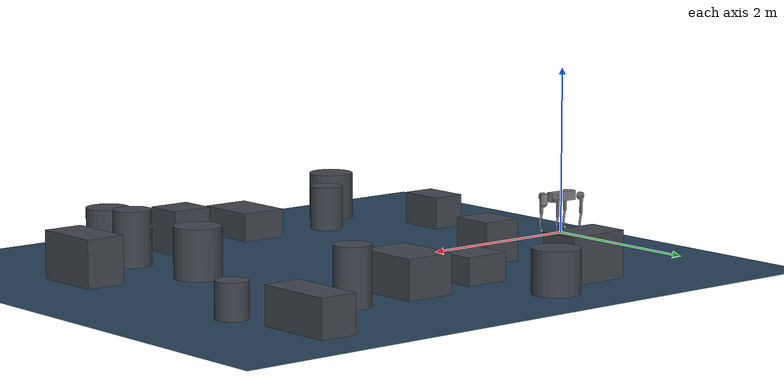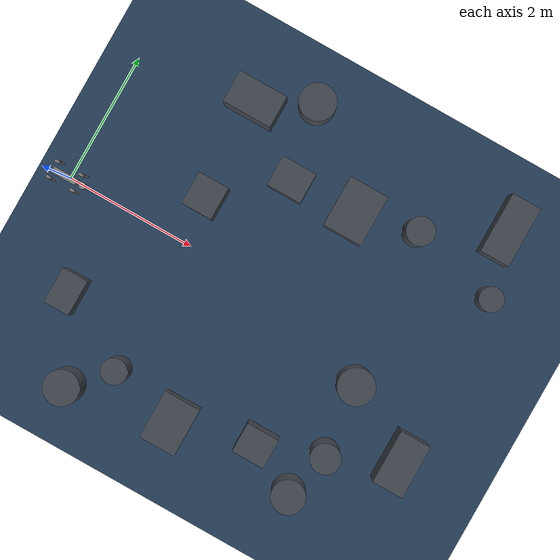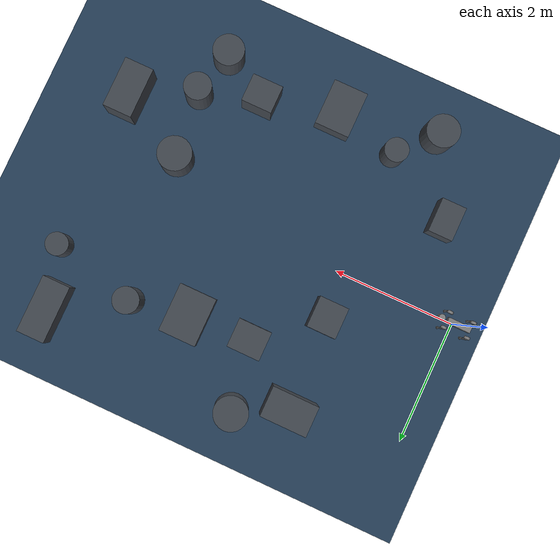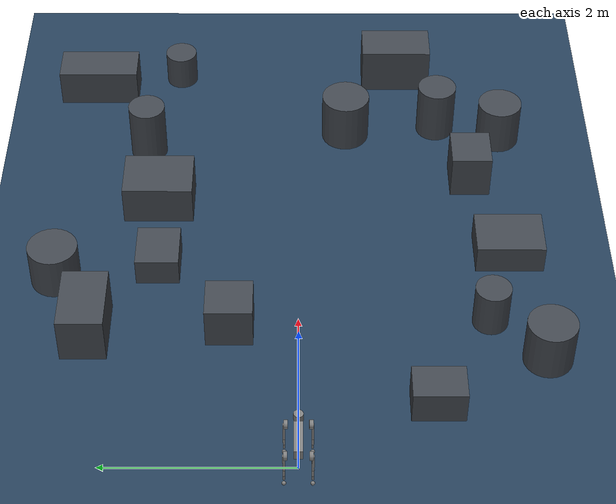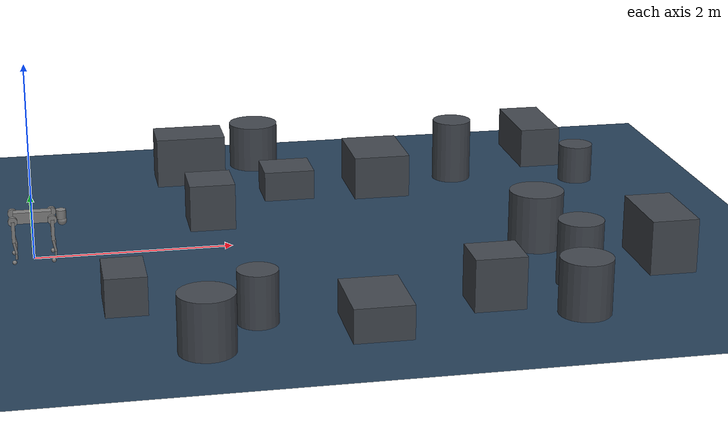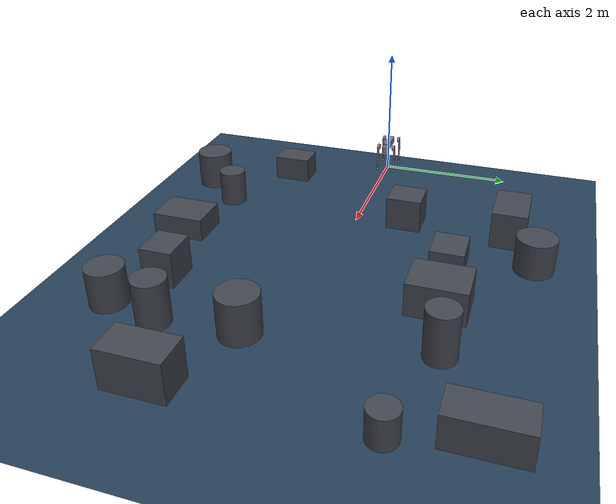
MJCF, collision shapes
<?xml version="1.0" encoding="utf-8"?>
<mujoco model="go2 random_scene_02">
  <include file="go2.xml" />
  <statistic center="3.5 0 0.1" extent="8" />
  <visual>
    <headlight diffuse="0.6 0.6 0.6" ambient="0.3 0.3 0.3" specular="0 0 0" />
    <rgba haze="0.15 0.25 0.35 1" />
    <global azimuth="135" elevation="-40" />
  </visual>
  <asset>
    <texture type="skybox" builtin="gradient" rgb1="0.3 0.5 0.7" rgb2="0 0 0" width="512" height="3072" />
    <texture type="2d" name="random_groundplane" builtin="checker" mark="edge" rgb1="0.2 0.3 0.4" rgb2="0.1 0.2 0.3" markrgb="0.8 0.8 0.8" width="300" height="300" />
    <material name="random_groundplane" texture="random_groundplane" texuniform="true" texrepeat="5 5" reflectance="0.2" />
  </asset>
  <worldbody>
    <light pos="1 0 7" dir="0 0 -1" directional="true" />
    <geom name="floor" type="plane" pos="3.5 0 0" size="4 3.5 0.05" material="random_groundplane" />
    <geom name="ppt_obstacle_01" type="box" pos="5.8666144287763284 2.4507292373361413 0.2207243472351913" size="0.22796385411482298 0.46908420685520985 0.2207243472351913" rgba="0.26 0.28 0.31 1" />
    <geom name="ppt_obstacle_02" type="box" pos="3.011683840544543 -2.3371202010685717 0.16699074246332057" size="0.28332904879342241 0.37755826151662475 0.16699074246332057" rgba="0.26 0.28 0.31 1" />
    <geom name="ppt_obstacle_03" type="box" pos="1.863052812518069 0.73520660935237681 0.24580754814207559" size="0.23852210798004803 0.25441510940798323 0.24580754814207559" rgba="0.26 0.28 0.31 1" />
    <geom name="ppt_obstacle_04" type="box" pos="4.2239451235041914 -1.9857407731299934 0.26069088177564781" size="0.25088733262420165 0.22704675595388868 0.26069088177564781" rgba="0.26 0.28 0.31 1" />
    <geom name="ppt_obstacle_05" type="box" pos="1.8059474168373204 2.2665524441731066 0.27215761077800116" size="0.38124683705223517 0.24846702512080221 0.27215761077800116" rgba="0.26 0.28 0.31 1" />
    <geom name="ppt_obstacle_06" type="cylinder" pos="5.048068215796258 -0.55664944153259999 0.29529587217212822" size="0.27683009090251592 0.29529587217212822" rgba="0.26 0.28 0.31 1" />
    <geom name="ppt_obstacle_07" type="box" pos="3.8231530303154106 1.5985787854748517 0.23310033609180836" size="0.30418509168611529 0.39484749384283241 0.23310033609180836" rgba="0.26 0.28 0.31 1" />
    <geom name="ppt_obstacle_08" type="box" pos="2.8076872557719921 1.5483700410983983 0.16156083838301316" size="0.2734131841184021 0.23863363182396558 0.16156083838301316" rgba="0.26 0.28 0.31 1" />
    <geom name="ppt_obstacle_09" type="cylinder" pos="2.597420814087116 2.670491414715285 0.25334390423238762" size="0.27535777118237786 0.25334390423238762" rgba="0.26 0.28 0.31 1" />
    <geom name="ppt_obstacle_10" type="cylinder" pos="5.163104764617227 -1.6443603079037463 0.32224284843072121" size="0.22315687199896661 0.32224284843072121" rgba="0.26 0.28 0.31 1" />
    <geom name="ppt_obstacle_11" type="cylinder" pos="1.9709901523489481 -2.0576478348276637 0.26017537562474963" size="0.19447722005873505 0.26017537562474963" rgba="0.26 0.28 0.31 1" />
    <geom name="ppt_obstacle_12" type="cylinder" pos="1.4397767712222929 -2.619904336087429 0.2787049252805518" size="0.26665014030779272 0.2787049252805518" rgba="0.26 0.28 0.31 1" />
    <geom name="ppt_obstacle_13" type="box" pos="6.1446584795366705 -1.1945093512363367 0.27648524734211954" size="0.23750131438940048 0.4118564520495851 0.27648524734211954" rgba="0.26 0.28 0.31 1" />
    <geom name="ppt_obstacle_14" type="box" pos="0.80028205099702854 -1.4257445400484394 0.19093907408062349" size="0.20108724885034815 0.28069907631024282 0.19093907408062349" rgba="0.26 0.28 0.31 1" />
    <geom name="ppt_obstacle_15" type="cylinder" pos="4.7492431872251961 1.7840870109679039 0.33880097229331829" size="0.21179735783983505 0.33880097229331829" rgba="0.26 0.28 0.31 1" />
    <geom name="ppt_obstacle_16" type="cylinder" pos="6.1211878449451742 1.4600255273771636 0.20651334935057369" size="0.18614473951768562 0.20651334935057369" rgba="0.26 0.28 0.31 1" />
    <geom name="ppt_obstacle_17" type="cylinder" pos="4.9814696563543519 -2.3838647607326431 0.27514107767442064" size="0.25324379498872673 0.27514107767442064" rgba="0.26 0.28 0.31 1" />
  </worldbody>
</mujoco>

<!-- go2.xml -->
<mujoco model="go2">
  <compiler angle="radian" meshdir="assets" autolimits="true" />

  <option cone="elliptic" impratio="100" />

  <default>
    <default class="go2">
      <geom friction="0.4" margin="0.001" condim="1"/>
      <joint axis="0 1 0" damping="0.1" armature="0.01" frictionloss="0.2"/>
      <motor ctrlrange="-23.7 23.7"/>
      <default class="abduction">
        <joint axis="1 0 0" range="-1.0472 1.0472"/>
      </default>
      <default class="hip">
        <default class="front_hip">
          <joint range="-1.5708 3.4907"/>
        </default>
        <default class="back_hip">
          <joint range="-0.5236 4.5379"/>
        </default>
      </default>
      <default class="knee">
        <joint range="-2.7227 -0.83776"/>
        <motor ctrlrange="-45.43 45.43"/>
      </default>
      <default class="visual">
        <geom type="mesh" contype="0" conaffinity="0" group="2"/>
      </default>
      <default class="collision">
        <geom group="3"/>
        <default class="foot">
          <geom size="0.022" pos="-0.002 0 -0.213" priority="1" condim="6"
            friction="0.4 0.02 0.01"/>
        </default>
      </default>
    </default>
  </default>

  <asset>
    <material name="metal" rgba=".9 .95 .95 1" />
    <material name="black" rgba="0 0 0 1" />
    <material name="white" rgba="1 1 1 1" />
    <material name="gray" rgba="0.671705 0.692426 0.774270 1" />
    <material name="transparent" rgba="1 1 1 0.01" />

    <mesh file="base_0.obj" />
    <mesh file="base_1.obj" />
    <mesh file="base_2.obj" />
    <mesh file="base_3.obj" />
    <mesh file="base_4.obj" />
    <mesh file="hip_0.obj" />
    <mesh file="hip_1.obj" />
    <mesh file="thigh_0.obj" />
    <mesh file="thigh_1.obj" />
    <mesh file="thigh_mirror_0.obj" />
    <mesh file="thigh_mirror_1.obj" />
    <mesh file="calf_0.obj" />
    <mesh file="calf_1.obj" />
    <mesh file="calf_mirror_0.obj" />
    <mesh file="calf_mirror_1.obj" />
    <mesh file="foot.obj" />
  </asset>

  <worldbody>
    <body name="base_link" pos="0 0 0.445" childclass="go2">
      <inertial pos="0.021112 0 -0.005366" quat="-0.000543471 0.713435 -0.00173769 0.700719"
        mass="6.921"
        diaginertia="0.107027 0.0980771 0.0244531" />
      <freejoint />
      <geom mesh="base_0" material="black" class="visual" />
      <geom mesh="base_1" material="black" class="visual" />
      <geom mesh="base_2" material="black" class="visual" />
      <geom mesh="base_3" material="white" class="visual" />
      <geom mesh="base_4" material="gray" class="visual" />
      <geom size="0.1881 0.04675 0.057" type="box" class="collision" />
      <geom size="0.05 0.045" pos="0.285 0 0.01" type="cylinder" class="collision" />
      <geom size="0.047" pos="0.293 0 -0.06" class="collision" />
      <site name="imu" pos="-0.02557 0 0.04232" />
      <body name="FL_hip" pos="0.1934 0.0465 0">
        <inertial pos="-0.0054 0.00194 -0.000105" quat="0.497014 0.499245 0.505462 0.498237"
          mass="0.678"
          diaginertia="0.00088403 0.000596003 0.000479967" />
        <joint name="FL_hip_joint" class="abduction" />
        <geom mesh="hip_0" material="metal" class="visual" />
        <geom mesh="hip_1" material="gray" class="visual" />
        <geom size="0.046 0.02" pos="0 0.08 0" quat="1 1 0 0" type="cylinder" class="collision" />
        <body name="FL_thigh" pos="0 0.0955 0">
          <inertial pos="-0.00374 -0.0223 -0.0327" quat="0.829533 0.0847635 -0.0200632 0.551623"
            mass="1.152"
            diaginertia="0.00594973 0.00584149 0.000878787" />
          <joint name="FL_thigh_joint" class="front_hip" />
          <geom mesh="thigh_0" material="metal" class="visual" />
          <geom mesh="thigh_1" material="gray" class="visual" />
          <geom size="0.1065 0.01225 0.017" pos="0 0 -0.1065" quat="0.707107 0 0.707107 0"
            type="box" class="collision" />
          <body name="FL_calf" pos="0 0 -0.213">
            <inertial pos="0.00629595 -0.000622121 -0.141417"
              quat="0.710672 0.00154099 -0.00450087 0.703508"
              mass="0.241352" diaginertia="0.0014901 0.00146356 5.31397e-05" />
            <joint name="FL_calf_joint" class="knee" />
            <geom mesh="calf_0" material="gray" class="visual" />
            <geom mesh="calf_1" material="black" class="visual" />
            <geom size="0.012 0.06" pos="0.008 0 -0.06" quat="0.994493 0 -0.104807 0"
              type="cylinder" class="collision" />
            <geom size="0.011 0.0325" pos="0.02 0 -0.148" quat="0.999688 0 0.0249974 0"
              type="cylinder" class="collision" />
            <geom pos="0 0 -0.213" mesh="foot" class="visual" material="black" />
            <geom name="FL" class="foot" />
            <site name="FL_touch" pos="0 0 -0.213" size="0.027" material="transparent"/>
            <body name="FL_foot" pos="0 0 -0.213"/>
          </body>
        </body>
      </body>
      <body name="FR_hip" pos="0.1934 -0.0465 0">
        <inertial pos="-0.0054 -0.00194 -0.000105" quat="0.498237 0.505462 0.499245 0.497014"
          mass="0.678"
          diaginertia="0.00088403 0.000596003 0.000479967" />
        <joint name="FR_hip_joint" class="abduction" />
        <geom mesh="hip_0" material="metal" class="visual" quat="4.63268e-05 1 0 0" />
        <geom mesh="hip_1" material="gray" class="visual" quat="4.63268e-05 1 0 0" />
        <geom size="0.046 0.02" pos="0 -0.08 0" quat="0.707107 0.707107 0 0" type="cylinder"
          class="collision" />
        <body name="FR_thigh" pos="0 -0.0955 0">
          <inertial pos="-0.00374 0.0223 -0.0327" quat="0.551623 -0.0200632 0.0847635 0.829533"
            mass="1.152"
            diaginertia="0.00594973 0.00584149 0.000878787" />
          <joint name="FR_thigh_joint" class="front_hip" />
          <geom mesh="thigh_mirror_0" material="metal" class="visual" />
          <geom mesh="thigh_mirror_1" material="gray" class="visual" />
          <geom size="0.1065 0.01225 0.017" pos="0 0 -0.1065" quat="0.707107 0 0.707107 0"
            type="box" class="collision" />
          <body name="FR_calf" pos="0 0 -0.213">
            <inertial pos="0.00629595 0.000622121 -0.141417"
              quat="0.703508 -0.00450087 0.00154099 0.710672"
              mass="0.241352" diaginertia="0.0014901 0.00146356 5.31397e-05" />
            <joint name="FR_calf_joint" class="knee" />
            <geom mesh="calf_mirror_0" material="gray" class="visual" />
            <geom mesh="calf_mirror_1" material="black" class="visual" />
            <geom size="0.013 0.06" pos="0.01 0 -0.06" quat="0.995004 0 -0.0998334 0"
              type="cylinder" class="collision" />
            <geom size="0.011 0.0325" pos="0.02 0 -0.148" quat="0.999688 0 0.0249974 0"
              type="cylinder" class="collision" />
            <geom pos="0 0 -0.213" mesh="foot" class="visual" material="black" />
            <geom name="FR" class="foot" />
            <site name="FR_touch" pos="0 0 -0.213" size="0.027" material="transparent"/>
            <body name="FR_foot" pos="0 0 -0.213"/>
          </body>
        </body>
      </body>
      <body name="RL_hip" pos="-0.1934 0.0465 0">
        <inertial pos="0.0054 0.00194 -0.000105" quat="0.505462 0.498237 0.497014 0.499245"
          mass="0.678"
          diaginertia="0.00088403 0.000596003 0.000479967" />
        <joint name="RL_hip_joint" class="abduction" />
        <geom mesh="hip_0" material="metal" class="visual" quat="4.63268e-05 0 1 0" />
        <geom mesh="hip_1" material="gray" class="visual" quat="4.63268e-05 0 1 0" />
        <geom size="0.046 0.02" pos="0 0.08 0" quat="0.707107 0.707107 0 0" type="cylinder"
          class="collision" />
        <body name="RL_thigh" pos="0 0.0955 0">
          <inertial pos="-0.00374 -0.0223 -0.0327" quat="0.829533 0.0847635 -0.0200632 0.551623"
            mass="1.152"
            diaginertia="0.00594973 0.00584149 0.000878787" />
          <joint name="RL_thigh_joint" class="back_hip" />
          <geom mesh="thigh_0" material="metal" class="visual" />
          <geom mesh="thigh_1" material="gray" class="visual" />
          <geom size="0.1065 0.01225 0.017" pos="0 0 -0.1065" quat="0.707107 0 0.707107 0"
            type="box" class="collision" />
          <body name="RL_calf" pos="0 0 -0.213">
            <inertial pos="0.00629595 -0.000622121 -0.141417"
              quat="0.710672 0.00154099 -0.00450087 0.703508"
              mass="0.241352" diaginertia="0.0014901 0.00146356 5.31397e-05" />
            <joint name="RL_calf_joint" class="knee" />
            <geom mesh="calf_0" material="gray" class="visual" />
            <geom mesh="calf_1" material="black" class="visual" />
            <geom size="0.013 0.06" pos="0.01 0 -0.06" quat="0.995004 0 -0.0998334 0"
              type="cylinder" class="collision" />
            <geom size="0.011 0.0325" pos="0.02 0 -0.148" quat="0.999688 0 0.0249974 0"
              type="cylinder" class="collision" />
            <geom pos="0 0 -0.213" mesh="foot" class="visual" material="black" />
            <geom name="RL" class="foot" />
            <site name="RL_touch" pos="0 0 -0.213" size="0.027" material="transparent"/>
            <body name="RL_foot" pos="0 0 -0.213" />
          </body>
        </body>
      </body>
      <body name="RR_hip" pos="-0.1934 -0.0465 0">
        <inertial pos="0.0054 -0.00194 -0.000105" quat="0.499245 0.497014 0.498237 0.505462"
          mass="0.678"
          diaginertia="0.00088403 0.000596003 0.000479967" />
        <joint name="RR_hip_joint" class="abduction" />
        <geom mesh="hip_0" material="metal" class="visual"
          quat="2.14617e-09 4.63268e-05 4.63268e-05 -1" />
        <geom mesh="hip_1" material="gray" class="visual"
          quat="2.14617e-09 4.63268e-05 4.63268e-05 -1" />
        <geom size="0.046 0.02" pos="0 -0.08 0" quat="0.707107 0.707107 0 0" type="cylinder"
          class="collision" />
        <body name="RR_thigh" pos="0 -0.0955 0">
          <inertial pos="-0.00374 0.0223 -0.0327" quat="0.551623 -0.0200632 0.0847635 0.829533"
            mass="1.152"
            diaginertia="0.00594973 0.00584149 0.000878787" />
          <joint name="RR_thigh_joint" class="back_hip" />
          <geom mesh="thigh_mirror_0" material="metal" class="visual" />
          <geom mesh="thigh_mirror_1" material="gray" class="visual" />
          <geom size="0.1065 0.01225 0.017" pos="0 0 -0.1065" quat="0.707107 0 0.707107 0"
            type="box" class="collision" />
          <body name="RR_calf" pos="0 0 -0.213">
            <inertial pos="0.00629595 0.000622121 -0.141417"
              quat="0.703508 -0.00450087 0.00154099 0.710672"
              mass="0.241352" diaginertia="0.0014901 0.00146356 5.31397e-05" />
            <joint name="RR_calf_joint" class="knee" />
            <geom mesh="calf_mirror_0" material="gray" class="visual" />
            <geom mesh="calf_mirror_1" material="black" class="visual" />
            <geom size="0.013 0.06" pos="0.01 0 -0.06" quat="0.995004 0 -0.0998334 0"
              type="cylinder" class="collision" />
            <geom size="0.011 0.0325" pos="0.02 0 -0.148" quat="0.999688 0 0.0249974 0"
              type="cylinder" class="collision" />
            <geom pos="0 0 -0.213" mesh="foot" class="visual" material="black" />
            <geom name="RR" class="foot" />
            <site name="RR_touch" pos="0 0 -0.213" size="0.027" material="transparent"/>
            <body name="RR_foot" pos="0 0 -0.213"/>
          </body>
        </body>
      </body>
    </body>
  </worldbody>

  <actuator>
    <motor class="abduction" name="FR_hip" joint="FR_hip_joint" />
    <motor class="hip" name="FR_thigh" joint="FR_thigh_joint" />
    <motor class="knee" name="FR_calf" joint="FR_calf_joint" />
    <motor class="abduction" name="FL_hip" joint="FL_hip_joint" />
    <motor class="hip" name="FL_thigh" joint="FL_thigh_joint" />
    <motor class="knee" name="FL_calf" joint="FL_calf_joint" />
    <motor class="abduction" name="RR_hip" joint="RR_hip_joint" />
    <motor class="hip" name="RR_thigh" joint="RR_thigh_joint" />
    <motor class="knee" name="RR_calf" joint="RR_calf_joint" />
    <motor class="abduction" name="RL_hip" joint="RL_hip_joint" />
    <motor class="hip" name="RL_thigh" joint="RL_thigh_joint" />
    <motor class="knee" name="RL_calf" joint="RL_calf_joint" />
  </actuator>

  <sensor>
    <jointpos name="FR_hip_pos" joint="FR_hip_joint" />
    <jointpos name="FR_thigh_pos" joint="FR_thigh_joint" />
    <jointpos name="FR_calf_pos" joint="FR_calf_joint" />
    <jointpos name="FL_hip_pos" joint="FL_hip_joint" />
    <jointpos name="FL_thigh_pos" joint="FL_thigh_joint" />
    <jointpos name="FL_calf_pos" joint="FL_calf_joint" />
    <jointpos name="RR_hip_pos" joint="RR_hip_joint" />
    <jointpos name="RR_thigh_pos" joint="RR_thigh_joint" />
    <jointpos name="RR_calf_pos" joint="RR_calf_joint" />
    <jointpos name="RL_hip_pos" joint="RL_hip_joint" />
    <jointpos name="RL_thigh_pos" joint="RL_thigh_joint" />
    <jointpos name="RL_calf_pos" joint="RL_calf_joint" />

    <jointvel name="FR_hip_vel" joint="FR_hip_joint" />
    <jointvel name="FR_thigh_vel" joint="FR_thigh_joint" />
    <jointvel name="FR_calf_vel" joint="FR_calf_joint" />
    <jointvel name="FL_hip_vel" joint="FL_hip_joint" />
    <jointvel name="FL_thigh_vel" joint="FL_thigh_joint" />
    <jointvel name="FL_calf_vel" joint="FL_calf_joint" />
    <jointvel name="RR_hip_vel" joint="RR_hip_joint" />
    <jointvel name="RR_thigh_vel" joint="RR_thigh_joint" />
    <jointvel name="RR_calf_vel" joint="RR_calf_joint" />
    <jointvel name="RL_hip_vel" joint="RL_hip_joint" />
    <jointvel name="RL_thigh_vel" joint="RL_thigh_joint" />
    <jointvel name="RL_calf_vel" joint="RL_calf_joint" />

    <jointactuatorfrc name="FR_hip_torque" joint="FR_hip_joint" noise="0.01" />
    <jointactuatorfrc name="FR_thigh_torque" joint="FR_thigh_joint" noise="0.01" />
    <jointactuatorfrc name="FR_calf_torque" joint="FR_calf_joint" noise="0.01" />
    <jointactuatorfrc name="FL_hip_torque" joint="FL_hip_joint" noise="0.01" />
    <jointactuatorfrc name="FL_thigh_torque" joint="FL_thigh_joint" noise="0.01" />
    <jointactuatorfrc name="FL_calf_torque" joint="FL_calf_joint" noise="0.01" />
    <jointactuatorfrc name="RR_hip_torque" joint="RR_hip_joint" noise="0.01" />
    <jointactuatorfrc name="RR_thigh_torque" joint="RR_thigh_joint" noise="0.01" />
    <jointactuatorfrc name="RR_calf_torque" joint="RR_calf_joint" noise="0.01" />
    <jointactuatorfrc name="RL_hip_torque" joint="RL_hip_joint" noise="0.01" />
    <jointactuatorfrc name="RL_thigh_torque" joint="RL_thigh_joint" noise="0.01" />
    <jointactuatorfrc name="RL_calf_torque" joint="RL_calf_joint" noise="0.01" />

    <framequat name="imu_quat" objtype="site" objname="imu" />
    <gyro name="imu_gyro" site="imu" />
    <accelerometer name="imu_acc" site="imu" />

    <framepos name="frame_pos" objtype="site" objname="imu" />
    <framelinvel name="frame_vel" objtype="site" objname="imu" />

    <touch name="FR_touch" site="FR_touch" />
    <touch name="FL_touch" site="FL_touch" />
    <touch name="RR_touch" site="RR_touch" />
    <touch name="RL_touch" site="RL_touch" />
  </sensor>

  <keyframe>
    <key name="home" qpos="0 0 0.445 1 0 0 0 0 0.8 -1.5 0 0.8 -1.5 0 0.8 -1.5 0 0.8 -1.5"
         ctrl="0 0 0 0 0 0 0 0 0 0 0 0" />
  </keyframe>
</mujoco>
